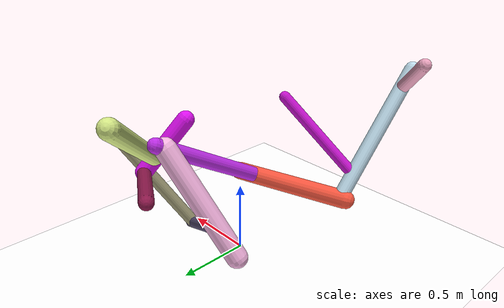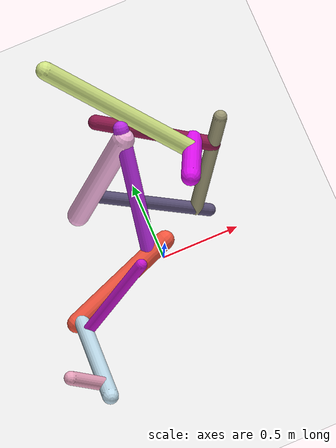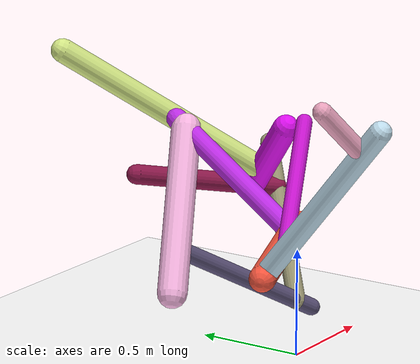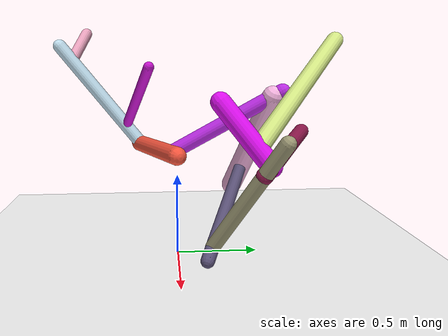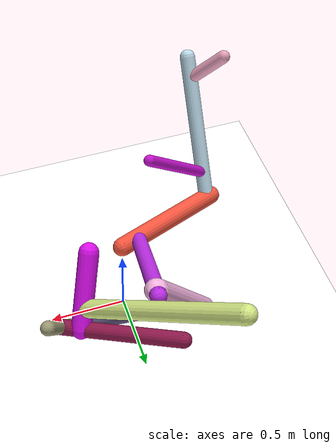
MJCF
<mujoco model="morphology">
  <option timestep="0.01"/>
  <default>
    <default class="/"/>
    <default class="0/"/>
    <default class="0/1/"/>
    <default class="0/1/2/"/>
    <default class="0/1/2/3/"/>
    <default class="0/1/2/3/4/"/>
    <default class="0/1/2/3/4/5/"/>
    <default class="0/1/2/3/4/5/6/"/>
    <default class="0/1/2/3/4/5/6/7/"/>
    <default class="0/8/"/>
    <default class="0/8/9/"/>
    <default class="0/8/10/"/>
  </default>
  <asset>
    <texture name="texplane" type="2d" builtin="checker" rgb1="0.10000000000000001 0.20000000000000001 0.29999999999999999" rgb2="0.20000000000000001 0.29999999999999999 0.40000000000000002" width="300" height="300"/>
    <material name="MatPlane" class="/" texture="texplane" texrepeat="20 20" specular="1" shininess="1" reflectance="0.5"/>
  </asset>
  <worldbody>
    <light name="//unnamed_light_0" class="/" directional="true" pos="0 0 1.5" dir="0 0 -1.3" cutoff="100" exponent="1" diffuse="1 1 1" specular="0.10000000000000001 0.10000000000000001 0.10000000000000001"/>
    <geom name="ground" class="/" type="plane" size="15 15 0.5" material="MatPlane" rgba="1 1 1 1"/>
    <site name="body" class="/" size="9.9999999999999995e-07 9.9999999999999995e-07 9.9999999999999995e-07" pos="0 0 0.62170670032501218"/>
    <body pos="0 0 0.62170670032501218" name="0/">
      <freejoint name="0/"/>
      <geom name="0/geom" class="0/" type="capsule" contype="1" conaffinity="1" condim="3" size="0.058471505277263761" rgba="0.97481407537471143 0.34232326891471543 0.24837723187280902 1" friction="0.59999999999999998 0.10000000000000001 0.10000000000000001" fromto="0 0 0 -0.685027784967845 -0.25597003796284928 -0.032791562378923889"/>
      <site name="0/end0" class="0/" size="0.0050000000000000001" pos="-0.685027784967845 -0.25597003796284928 -0.032791562378923889"/>
      <site name="0/attach1" class="0/" size="9.9999999999999995e-07 9.9999999999999995e-07 9.9999999999999995e-07" pos="-0.11722276850154091 -0.043801897035254084 -0.0056113311166332697"/>
      <body pos="-0.11722276850154091 -0.043801897035254084 -0.0056113311166332697" name="0/1/">
        <joint name="0/1/joint/" class="0/" type="hinge" axis="0 1 0" limited="true" range="-60.232407802731977 60.232407802731977"/>
        <geom name="0/1/geom" class="0/1/" type="capsule" contype="1" conaffinity="1" condim="3" size="0.048347156724001507" rgba="0.75014242665416031 0.17683915945683248 0.91123941949489218 1" friction="0.59999999999999998 0.10000000000000001 0.10000000000000001" fromto="0 0 0 0.1091767868539848 0.6930898624979942 0.40014318997750653"/>
        <site name="0/1/end1" class="0/1/" size="0.0050000000000000001" pos="0.1091767868539848 0.6930898624979942 0.40014318997750653"/>
        <site name="0/1/attach2" class="0/1/" size="9.9999999999999995e-07 9.9999999999999995e-07 9.9999999999999995e-07" pos="0.10007251058913641 0.63529294644672085 0.3667751613696929"/>
        <body pos="0.10007251058913641 0.63529294644672085 0.3667751613696929" name="0/1/2/">
          <geom name="0/1/2/geom" class="0/1/2/" type="capsule" contype="1" conaffinity="1" condim="3" size="0.068238398960305383" rgba="0.98109993919499583 0.7221136926570243 0.89688069232577816 1" friction="0.59999999999999998 0.10000000000000001 0.10000000000000001" fromto="0 0 0 -0.39052293104783736 -0.19189937514383204 -0.65209282477990582"/>
          <site name="0/1/2/end2" class="0/1/2/" size="0.0050000000000000001" pos="-0.39052293104783736 -0.19189937514383204 -0.65209282477990582"/>
          <site name="0/1/2/attach3" class="0/1/2/" size="9.9999999999999995e-07 9.9999999999999995e-07 9.9999999999999995e-07" pos="-0.28505503880031713 -0.14007342329580363 -0.47598317714734834"/>
          <body pos="-0.28505503880031713 -0.14007342329580363 -0.47598317714734834" name="0/1/2/3/">
            <joint name="0/1/2/3/joint/" class="0/1/2/" type="hinge" axis="0 -0.95932273240981725 0.28231169845006743" limited="true" range="-68.525430089877943 68.525430089877943"/>
            <geom name="0/1/2/3/geom" class="0/1/2/3/" type="capsule" contype="1" conaffinity="1" condim="3" size="0.040970409813568531" rgba="0.35600913941739176 0.31864571141603137 0.46768506449374414 1" friction="0.59999999999999998 0.10000000000000001 0.10000000000000001" fromto="0 0 0 0.67643886083217231 -0.29783991360405704 -0.40688735636698892"/>
            <site name="0/1/2/3/end3" class="0/1/2/3/" size="0.0050000000000000001" pos="0.67643886083217231 -0.29783991360405704 -0.40688735636698892"/>
            <site name="0/1/2/3/attach4" class="0/1/2/3/" size="9.9999999999999995e-07 9.9999999999999995e-07 9.9999999999999995e-07" pos="0.59896989738219641 -0.26372988427701444 -0.36028870042952033"/>
            <body pos="0.59896989738219641 -0.26372988427701444 -0.36028870042952033" name="0/1/2/3/4/">
              <geom name="0/1/2/3/4/geom" class="0/1/2/3/4/" type="capsule" contype="1" conaffinity="1" condim="3" size="0.043074197596328037" rgba="0.62665030016550105 0.60949745499330243 0.46540291488872743 1" friction="0.59999999999999998 0.10000000000000001 0.10000000000000001" fromto="0 0 0 0.29274676085594398 0.34305435766767389 0.64790965212916363"/>
              <site name="0/1/2/3/4/end4" class="0/1/2/3/4/" size="0.0050000000000000001" pos="0.29274676085594398 0.34305435766767389 0.64790965212916363"/>
              <site name="0/1/2/3/4/attach5" class="0/1/2/3/4/" size="9.9999999999999995e-07 9.9999999999999995e-07 9.9999999999999995e-07" pos="0.20963344109345147 0.24565827908636265 0.46396253709647112"/>
              <body pos="0.20963344109345147 0.24565827908636265 0.46396253709647112" name="0/1/2/3/4/5/">
                <joint name="0/1/2/3/4/5/joint/" class="0/1/2/3/4/" type="hinge" axis="5.5511151231257827e-17 -0.88376345526109823 0.46793392177204396" limited="true" range="-37.961268167107619 37.961268167107619"/>
                <geom name="0/1/2/3/4/5/geom" class="0/1/2/3/4/5/" type="capsule" contype="1" conaffinity="1" condim="3" size="0.046612643992043484" rgba="0.56030444649114708 0.098413186101717565 0.3004050043636709 1" friction="0.59999999999999998 0.10000000000000001 0.10000000000000001" fromto="0 0 0 -0.61608197075287929 0.37163525792338192 0.14156652020025162"/>
                <site name="0/1/2/3/4/5/end5" class="0/1/2/3/4/5/" size="0.0050000000000000001" pos="-0.61608197075287929 0.37163525792338192 0.14156652020025162"/>
                <site name="0/1/2/3/4/5/attach6" class="0/1/2/3/4/5/" size="9.9999999999999995e-07 9.9999999999999995e-07 9.9999999999999995e-07" pos="-0.10749948113498976 0.064846236856128517 0.024701790005339112"/>
                <body pos="-0.10749948113498976 0.064846236856128517 0.024701790005339112" name="0/1/2/3/4/5/6/">
                  <geom name="0/1/2/3/4/5/6/geom" class="0/1/2/3/4/5/6/" type="capsule" contype="1" conaffinity="1" condim="3" size="0.059044837772720807" rgba="0.88901215789485877 0.061718194623675671 0.95690979052918645 1" friction="0.59999999999999998 0.10000000000000001 0.10000000000000001" fromto="0 0 0 -0.13474166091329731 -0.26553706890280188 0.34131023107089464"/>
                  <site name="0/1/2/3/4/5/6/end6" class="0/1/2/3/4/5/6/" size="0.0050000000000000001" pos="-0.13474166091329731 -0.26553706890280188 0.34131023107089464"/>
                  <site name="0/1/2/3/4/5/6/attach7" class="0/1/2/3/4/5/6/" size="9.9999999999999995e-07 9.9999999999999995e-07 9.9999999999999995e-07" pos="-0.036934298420382893 -0.072786881785884161 0.093557210463762405"/>
                  <body pos="-0.036934298420382893 -0.072786881785884161 0.093557210463762405" name="0/1/2/3/4/5/6/7/">
                    <geom name="0/1/2/3/4/5/6/7/geom" class="0/1/2/3/4/5/6/7/" type="capsule" contype="1" conaffinity="1" condim="3" size="0.055269430547492046" rgba="0.83824467027029059 0.91747371411747747 0.5268065788152041 1" friction="0.59999999999999998 0.10000000000000001 0.10000000000000001" fromto="0 0 0 -0.66407007757777103 0.64593867924914261 0.60767862368776338"/>
                    <site name="0/1/2/3/4/5/6/7/end7" class="0/1/2/3/4/5/6/7/" size="0.0050000000000000001" pos="-0.66407007757777103 0.64593867924914261 0.60767862368776338"/>
                  </body>
                </body>
              </body>
            </body>
          </body>
        </body>
      </body>
      <site name="0/attach8" class="0/" size="9.9999999999999995e-07 9.9999999999999995e-07 9.9999999999999995e-07" pos="-0.65175450542743785 -0.24353702018751 -0.031198805346956422"/>
      <body pos="-0.65175450542743785 -0.24353702018751 -0.031198805346956422" name="0/8/">
        <joint name="0/8/joint/" class="0/" type="hinge" axis="0 0 1" limited="true" range="-53.727762060384784 53.727762060384784"/>
        <geom name="0/8/geom" class="0/8/" type="capsule" contype="1" conaffinity="1" condim="3" size="0.047458337238407179" rgba="0.76492267023645499 0.88366796325861396 0.94768487233195153 1" friction="0.59999999999999998 0.10000000000000001 0.10000000000000001" fromto="0 0 0 -0.039017243345760066 -0.57452755111690124 0.71334039000990379"/>
        <site name="0/8/end8" class="0/8/" size="0.0050000000000000001" pos="-0.039017243345760066 -0.57452755111690124 0.71334039000990379"/>
        <site name="0/8/attach9" class="0/8/" size="9.9999999999999995e-07 9.9999999999999995e-07 9.9999999999999995e-07" pos="-0.033244501135992206 -0.48952412287323194 0.60779910041006002"/>
        <body pos="-0.033244501135992206 -0.48952412287323194 0.60779910041006002" name="0/8/9/">
          <joint name="0/8/9/joint/" class="0/8/" type="hinge" axis="0.99909392623757276 -0.02669590898393176 0.033145965044228232" limited="true" range="-67.176534319763846 67.176534319763846"/>
          <geom name="0/8/9/geom" class="0/8/9/" type="capsule" contype="1" conaffinity="1" condim="3" size="0.040628673571855692" rgba="0.93071352162003818 0.64782862458619461 0.75367344554479221 1" friction="0.59999999999999998 0.10000000000000001 0.10000000000000001" fromto="0 0 0 -0.17379202534330607 0.085594646153318243 0.19998480470183311"/>
          <site name="0/8/9/end9" class="0/8/9/" size="0.0050000000000000001" pos="-0.17379202534330607 0.085594646153318243 0.19998480470183311"/>
        </body>
        <site name="0/8/attach10" class="0/8/" size="9.9999999999999995e-07 9.9999999999999995e-07 9.9999999999999995e-07" pos="-0.0072253080418426844 -0.10639240959590311 0.13209810879860229"/>
        <body pos="-0.0072253080418426844 -0.10639240959590311 0.13209810879860229" name="0/8/10/">
          <joint name="0/8/10/joint/" class="0/8/" type="hinge" axis="-5.5511151231257827e-17 0.77881138377619985 0.62725818328707417" limited="true" range="-51.726199896263161 51.726199896263161"/>
          <geom name="0/8/10/geom" class="0/8/10/" type="capsule" contype="1" conaffinity="1" condim="3" size="0.0351421617073297" rgba="0.79637769779597234 0.080964831827896044 0.82405661708263311 1" friction="0.59999999999999998 0.10000000000000001 0.10000000000000001" fromto="0 0 0 0.43269367445415208 0.17908387755431243 0.43788062273377659"/>
          <site name="0/8/10/end10" class="0/8/10/" size="0.0050000000000000001" pos="0.43269367445415208 0.17908387755431243 0.43788062273377659"/>
        </body>
      </body>
      <camera name="0/iso" class="0/" mode="trackcom" pos="-2.2999999999999998 -2.2999999999999998 1" xyaxes="0.45000000000000001 -0.45000000000000001 0 0.29999999999999999 0.14999999999999999 0.93999999999999995"/>
    </body>
  </worldbody>
  <actuator>
    <motor name="0/1/motor" class="0/1/" ctrllimited="true" ctrlrange="-1 1" gear="83" joint="0/1/joint/"/>
    <motor name="0/1/2/3/motor" class="0/1/2/3/" ctrllimited="true" ctrlrange="-1 1" gear="62" joint="0/1/2/3/joint/"/>
    <motor name="0/1/2/3/4/5/motor" class="0/1/2/3/4/5/" ctrllimited="true" ctrlrange="-1 1" gear="67" joint="0/1/2/3/4/5/joint/"/>
    <motor name="0/8/motor" class="0/8/" ctrllimited="true" ctrlrange="-1 1" gear="94" joint="0/8/joint/"/>
    <motor name="0/8/9/motor" class="0/8/9/" ctrllimited="true" ctrlrange="-1 1" gear="69" joint="0/8/9/joint/"/>
    <motor name="0/8/10/motor" class="0/8/10/" ctrllimited="true" ctrlrange="-1 1" gear="83" joint="0/8/10/joint/"/>
  </actuator>
  <sensor>
    <subtreelinvel name="velocity" body="0/"/>
  </sensor>
</mujoco>
